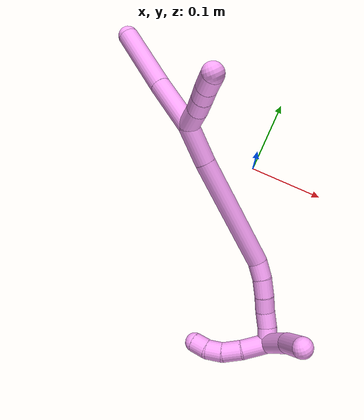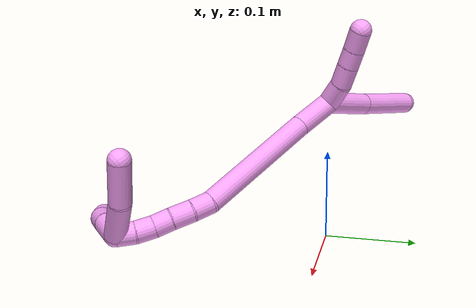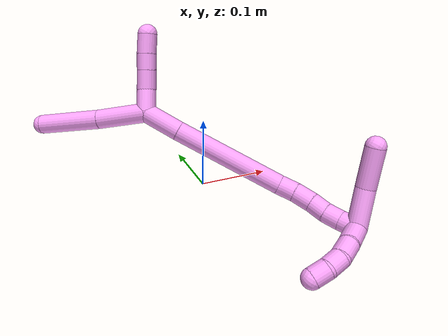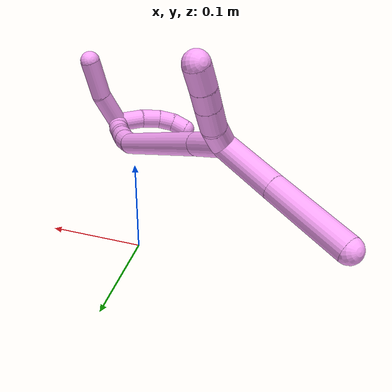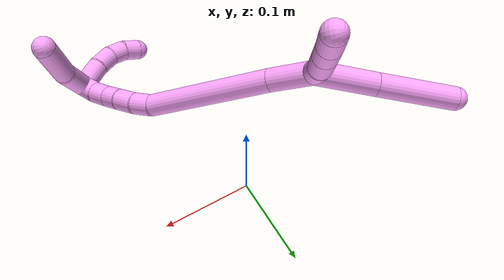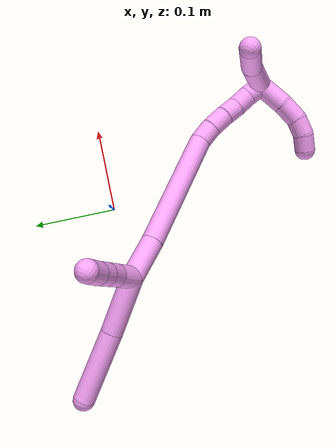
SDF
<sdf version="1.7">
 <world name="default">
  <model name="photoneo_s_sensor">
   <static>1</static>
   <pose>0 0 2 1.57079 1.57079 3.14159</pose>
   <link name="link">
    <inertial><mass>0.1</mass></inertial>
    <sensor name="sensor" type="depth">
     <update_rate>30</update_rate>
     <camera>
      <horizontal_fov>1.22</horizontal_fov>
      <image><width>1920</width><height>1200</height><format>B8G8R8</format></image>
      <clip><near>0.1</near><far>4</far></clip>
      <depth_camera><output>points</output></depth_camera>
     </camera>
     <plugin name="camera_plugin" filename="libgazebo_ros_depth_camera.so">
      <baseline>0.2</baseline>
      <alwaysOn>1</alwaysOn>
      <updateRate>0.0</updateRate>
      <cameraName>camera_ir</cameraName>
      <imageTopicName>/camera/color/image_raw</imageTopicName>
      <cameraInfoTopicName>/camera/color/camera_info</cameraInfoTopicName>
      <depthImageTopicName>/camera/depth/image_raw</depthImageTopicName>
      <depthImageCameraInfoTopicName>/camera/depth/camera_info</depthImageCameraInfoTopicName>
      <pointCloudTopicName>/camera/depth/points</pointCloudTopicName>
      <frameName>fr_optical</frameName>
      <pointCloudCutoff>0.1</pointCloudCutoff>
      <pointCloudCutoffMax>2.0</pointCloudCutoffMax>
      <distortionK1>0</distortionK1>
      <distortionK2>0</distortionK2>
      <distortionK3>0</distortionK3>
      <distortionT1>0</distortionT1>
      <distortionT2>0</distortionT2>
      <CxPrime>0</CxPrime>
      <Cx>0</Cx>
      <Cy>0</Cy>
      <focalLength>0</focalLength>
      <hackBaseline>0</hackBaseline>
     </plugin>
    </sensor>
   </link>
  </model>
  <model name="bin">
   <static>1</static>
   <link name="bottom">
    <collision name="collision-bottom">
     <pose>0 0 -0.01 0 -0 0</pose>
     <geometry><box><size>0.8 0.6 0.02</size></box></geometry>
     <surface>
      <friction><ode><mu>100</mu><mu2>100</mu2></ode></friction>
      <contact><collide_bitmask>65535</collide_bitmask></contact>
     </surface>
    </collision>
   </link>
   <link name="west_wall">
    <collision name="collision-west_wall">
     <pose>-0.41 0 0.1 0 -0 0</pose>
     <geometry><box><size>0.02 0.6 0.2</size></box></geometry>
     <surface>
      <friction><ode><mu>100</mu><mu2>100</mu2></ode></friction>
      <contact><collide_bitmask>65535</collide_bitmask></contact>
     </surface>
    </collision>
   </link>
   <link name="east_wall">
    <collision name="collision-east_wall">
     <pose>0.41 0 0.1 0 -0 0</pose>
     <geometry><box><size>0.02 0.6 0.2</size></box></geometry>
     <surface>
      <friction><ode><mu>100</mu><mu2>100</mu2></ode></friction>
      <contact><collide_bitmask>65535</collide_bitmask></contact>
     </surface>
    </collision>
   </link>
   <link name="south_wall">
    <collision name="collision-south_wall">
     <pose>0 -0.31 0.1 0 -0 0</pose>
     <geometry><box><size>0.8 0.02 0.2</size></box></geometry>
     <surface>
      <friction><ode><mu>100</mu><mu2>100</mu2></ode></friction>
      <contact><collide_bitmask>65535</collide_bitmask></contact>
     </surface>
    </collision>
   </link>
   <link name="north_wall">
    <collision name="collision-north_wall">
     <pose>0 0.31 0.1 0 -0 0</pose>
     <geometry><box><size>0.8 0.02 0.2</size></box></geometry>
     <surface>
      <friction><ode><mu>100</mu><mu2>100</mu2></ode></friction>
      <contact><collide_bitmask>65535</collide_bitmask></contact>
     </surface>
    </collision>
   </link>
  </model>
  <model name="4">
   <static>0</static>
   <link name="4">
    <collision name="collision-cylinder-e_1_2_8">
     <pose>-0.019571 0.007576 0.025425 -0.289599 -0.635602 0.095862</pose>
     <geometry><cylinder><radius>0.0125</radius><length>0.065935</length></cylinder></geometry>
     <surface>
      <friction><ode><mu>1.16</mu><mu2>1.16</mu2><slip1>0</slip1><slip2>0</slip2></ode></friction>
      <contact><ode><kp>1e+06</kp><kd>1</kd><max_vel>0</max_vel><min_depth>0.001</min_depth></ode></contact>
     </surface>
    </collision>
    <visual name="visual-cylinder-e_1_2_8">
     <pose>-0.019571 0.007576 0.025425 -0.289599 -0.635602 0.095862</pose>
     <geometry><cylinder><radius>0.0125</radius><length>0.065935</length></cylinder></geometry>
     <material><ambient>1 0.65098 0.996078 1</ambient></material>
    </visual>
    <collision name="collision-cylinder-e_2_8_6">
     <pose>-0.06235 0.025081 0.084459 -0.28726 -0.584903 0.087034</pose>
     <geometry><cylinder><radius>0.0125</radius><length>0.084065</length></cylinder></geometry>
     <surface>
      <friction><ode><mu>1.16</mu><mu2>1.16</mu2><slip1>0</slip1><slip2>0</slip2></ode></friction>
      <contact><ode><kp>1e+06</kp><kd>1</kd><max_vel>0</max_vel><min_depth>0.001</min_depth></ode></contact>
     </surface>
    </collision>
    <visual name="visual-cylinder-e_2_8_6">
     <pose>-0.06235 0.025081 0.084459 -0.28726 -0.584903 0.087034</pose>
     <geometry><cylinder><radius>0.0125</radius><length>0.084065</length></cylinder></geometry>
     <material><ambient>1 0.65098 0.996078 1</ambient></material>
    </visual>
    <collision name="collision-cylinder-e_1_2_9">
     <pose>0.012501 0.00064 0.007726 -0.082665 1.01572 -0.046025</pose>
     <geometry><cylinder><radius>0.0125</radius><length>0.02942</length></cylinder></geometry>
     <surface>
      <friction><ode><mu>1.16</mu><mu2>1.16</mu2><slip1>0</slip1><slip2>0</slip2></ode></friction>
      <contact><ode><kp>1e+06</kp><kd>1</kd><max_vel>0</max_vel><min_depth>0.001</min_depth></ode></contact>
     </surface>
    </collision>
    <visual name="visual-cylinder-e_1_2_9">
     <pose>0.012501 0.00064 0.007726 -0.082665 1.01572 -0.046025</pose>
     <geometry><cylinder><radius>0.0125</radius><length>0.02942</length></cylinder></geometry>
     <material><ambient>1 0.65098 0.996078 1</ambient></material>
    </visual>
    <collision name="collision-cylinder-e_2_9_10">
     <pose>0.035694 -0.000972 0.021773 0.342224 1.01029 0.190541</pose>
     <geometry><cylinder><radius>0.0125</radius><length>0.025245</length></cylinder></geometry>
     <surface>
      <friction><ode><mu>1.16</mu><mu2>1.16</mu2><slip1>0</slip1><slip2>0</slip2></ode></friction>
      <contact><ode><kp>1e+06</kp><kd>1</kd><max_vel>0</max_vel><min_depth>0.001</min_depth></ode></contact>
     </surface>
    </collision>
    <visual name="visual-cylinder-e_2_9_10">
     <pose>0.035694 -0.000972 0.021773 0.342224 1.01029 0.190541</pose>
     <geometry><cylinder><radius>0.0125</radius><length>0.025245</length></cylinder></geometry>
     <material><ambient>1 0.65098 0.996078 1</ambient></material>
    </visual>
    <collision name="collision-cylinder-e_3_10_11">
     <pose>0.055092 -0.005138 0.03332 0.351227 1.00209 0.193747</pose>
     <geometry><cylinder><radius>0.0125</radius><length>0.020669</length></cylinder></geometry>
     <surface>
      <friction><ode><mu>1.16</mu><mu2>1.16</mu2><slip1>0</slip1><slip2>0</slip2></ode></friction>
      <contact><ode><kp>1e+06</kp><kd>1</kd><max_vel>0</max_vel><min_depth>0.001</min_depth></ode></contact>
     </surface>
    </collision>
    <visual name="visual-cylinder-e_3_10_11">
     <pose>0.055092 -0.005138 0.03332 0.351227 1.00209 0.193747</pose>
     <geometry><cylinder><radius>0.0125</radius><length>0.020669</length></cylinder></geometry>
     <material><ambient>1 0.65098 0.996078 1</ambient></material>
    </visual>
    <collision name="collision-cylinder-e_4_11_5">
     <pose>0.074495 -0.009333 0.044248 0.380257 1.04952 0.221907</pose>
     <geometry><cylinder><radius>0.0125</radius><length>0.024667</length></cylinder></geometry>
     <surface>
      <friction><ode><mu>1.16</mu><mu2>1.16</mu2><slip1>0</slip1><slip2>0</slip2></ode></friction>
      <contact><ode><kp>1e+06</kp><kd>1</kd><max_vel>0</max_vel><min_depth>0.001</min_depth></ode></contact>
     </surface>
    </collision>
    <visual name="visual-cylinder-e_4_11_5">
     <pose>0.074495 -0.009333 0.044248 0.380257 1.04952 0.221907</pose>
     <geometry><cylinder><radius>0.0125</radius><length>0.024667</length></cylinder></geometry>
     <material><ambient>1 0.65098 0.996078 1</ambient></material>
    </visual>
    <collision name="collision-cylinder-e_1_2_12">
     <pose>0.000751 -2.6e-05 -0.023859 3.1405 0.031458 3.07182</pose>
     <geometry><cylinder><radius>0.0125</radius><length>0.047741</length></cylinder></geometry>
     <surface>
      <friction><ode><mu>1.16</mu><mu2>1.16</mu2><slip1>0</slip1><slip2>0</slip2></ode></friction>
      <contact><ode><kp>1e+06</kp><kd>1</kd><max_vel>0</max_vel><min_depth>0.001</min_depth></ode></contact>
     </surface>
    </collision>
    <visual name="visual-cylinder-e_1_2_12">
     <pose>0.000751 -2.6e-05 -0.023859 3.1405 0.031458 3.07182</pose>
     <geometry><cylinder><radius>0.0125</radius><length>0.047741</length></cylinder></geometry>
     <material><ambient>1 0.65098 0.996078 1</ambient></material>
    </visual>
    <collision name="collision-cylinder-e_2_12_13">
     <pose>0.006203 0.003274 -0.119749 -3.09544 0.065103 -1.90849</pose>
     <geometry><cylinder><radius>0.0125</radius><length>0.144522</length></cylinder></geometry>
     <surface>
      <friction><ode><mu>1.16</mu><mu2>1.16</mu2><slip1>0</slip1><slip2>0</slip2></ode></friction>
      <contact><ode><kp>1e+06</kp><kd>1</kd><max_vel>0</max_vel><min_depth>0.001</min_depth></ode></contact>
     </surface>
    </collision>
    <visual name="visual-cylinder-e_2_12_13">
     <pose>0.006203 0.003274 -0.119749 -3.09544 0.065103 -1.90849</pose>
     <geometry><cylinder><radius>0.0125</radius><length>0.144522</length></cylinder></geometry>
     <material><ambient>1 0.65098 0.996078 1</ambient></material>
    </visual>
    <collision name="collision-cylinder-e_3_13_14">
     <pose>0.011948 0.003997 -0.202709 2.90776 0.092683 0.752101</pose>
     <geometry><cylinder><radius>0.0125</radius><length>0.022566</length></cylinder></geometry>
     <surface>
      <friction><ode><mu>1.16</mu><mu2>1.16</mu2><slip1>0</slip1><slip2>0</slip2></ode></friction>
      <contact><ode><kp>1e+06</kp><kd>1</kd><max_vel>0</max_vel><min_depth>0.001</min_depth></ode></contact>
     </surface>
    </collision>
    <visual name="visual-cylinder-e_3_13_14">
     <pose>0.011948 0.003997 -0.202709 2.90776 0.092683 0.752101</pose>
     <geometry><cylinder><radius>0.0125</radius><length>0.022566</length></cylinder></geometry>
     <material><ambient>1 0.65098 0.996078 1</ambient></material>
    </visual>
    <collision name="collision-cylinder-e_4_14_15">
     <pose>0.012783 -0.002513 -0.224812 2.80522 -0.01766 -0.103921</pose>
     <geometry><cylinder><radius>0.0125</radius><length>0.023679</length></cylinder></geometry>
     <surface>
      <friction><ode><mu>1.16</mu><mu2>1.16</mu2><slip1>0</slip1><slip2>0</slip2></ode></friction>
      <contact><ode><kp>1e+06</kp><kd>1</kd><max_vel>0</max_vel><min_depth>0.001</min_depth></ode></contact>
     </surface>
    </collision>
    <visual name="visual-cylinder-e_4_14_15">
     <pose>0.012783 -0.002513 -0.224812 2.80522 -0.01766 -0.103921</pose>
     <geometry><cylinder><radius>0.0125</radius><length>0.023679</length></cylinder></geometry>
     <material><ambient>1 0.65098 0.996078 1</ambient></material>
    </visual>
    <collision name="collision-cylinder-e_5_15_16">
     <pose>0.011419 -0.009662 -0.24542 2.81059 -0.115258 -0.665147</pose>
     <geometry><cylinder><radius>0.0125</radius><length>0.020085</length></cylinder></geometry>
     <surface>
      <friction><ode><mu>1.16</mu><mu2>1.16</mu2><slip1>0</slip1><slip2>0</slip2></ode></friction>
      <contact><ode><kp>1e+06</kp><kd>1</kd><max_vel>0</max_vel><min_depth>0.001</min_depth></ode></contact>
     </surface>
    </collision>
    <visual name="visual-cylinder-e_5_15_16">
     <pose>0.011419 -0.009662 -0.24542 2.81059 -0.115258 -0.665147</pose>
     <geometry><cylinder><radius>0.0125</radius><length>0.020085</length></cylinder></geometry>
     <material><ambient>1 0.65098 0.996078 1</ambient></material>
    </visual>
    <collision name="collision-cylinder-e_6_16_17">
     <pose>0.010691 -0.016811 -0.264465 2.75547 0.041102 0.209505</pose>
     <geometry><cylinder><radius>0.0125</radius><length>0.020765</length></cylinder></geometry>
     <surface>
      <friction><ode><mu>1.16</mu><mu2>1.16</mu2><slip1>0</slip1><slip2>0</slip2></ode></friction>
      <contact><ode><kp>1e+06</kp><kd>1</kd><max_vel>0</max_vel><min_depth>0.001</min_depth></ode></contact>
     </surface>
    </collision>
    <visual name="visual-cylinder-e_6_16_17">
     <pose>0.010691 -0.016811 -0.264465 2.75547 0.041102 0.209505</pose>
     <geometry><cylinder><radius>0.0125</radius><length>0.020765</length></cylinder></geometry>
     <material><ambient>1 0.65098 0.996078 1</ambient></material>
    </visual>
    <collision name="collision-cylinder-e_7_17_1">
     <pose>0.011783 -0.026184 -0.282804 2.58211 0.06449 0.22363</pose>
     <geometry><cylinder><radius>0.0125</radius><length>0.020642</length></cylinder></geometry>
     <surface>
      <friction><ode><mu>1.16</mu><mu2>1.16</mu2><slip1>0</slip1><slip2>0</slip2></ode></friction>
      <contact><ode><kp>1e+06</kp><kd>1</kd><max_vel>0</max_vel><min_depth>0.001</min_depth></ode></contact>
     </surface>
    </collision>
    <visual name="visual-cylinder-e_7_17_1">
     <pose>0.011783 -0.026184 -0.282804 2.58211 0.06449 0.22363</pose>
     <geometry><cylinder><radius>0.0125</radius><length>0.020642</length></cylinder></geometry>
     <material><ambient>1 0.65098 0.996078 1</ambient></material>
    </visual>
    <collision name="collision-cylinder-e_1_1_18">
     <pose>0.00176 -0.044708 -0.288741 1.36015 -0.674994 -0.553098</pose>
     <geometry><cylinder><radius>0.0125</radius><length>0.034205</length></cylinder></geometry>
     <surface>
      <friction><ode><mu>1.16</mu><mu2>1.16</mu2><slip1>0</slip1><slip2>0</slip2></ode></friction>
      <contact><ode><kp>1e+06</kp><kd>1</kd><max_vel>0</max_vel><min_depth>0.001</min_depth></ode></contact>
     </surface>
    </collision>
    <visual name="visual-cylinder-e_1_1_18">
     <pose>0.00176 -0.044708 -0.288741 1.36015 -0.674994 -0.553098</pose>
     <geometry><cylinder><radius>0.0125</radius><length>0.034205</length></cylinder></geometry>
     <material><ambient>1 0.65098 0.996078 1</ambient></material>
    </visual>
    <collision name="collision-cylinder-e_2_18_19">
     <pose>-0.018192 -0.065747 -0.283668 1.29247 -0.840213 -0.649981</pose>
     <geometry><cylinder><radius>0.0125</radius><length>0.024881</length></cylinder></geometry>
     <surface>
      <friction><ode><mu>1.16</mu><mu2>1.16</mu2><slip1>0</slip1><slip2>0</slip2></ode></friction>
      <contact><ode><kp>1e+06</kp><kd>1</kd><max_vel>0</max_vel><min_depth>0.001</min_depth></ode></contact>
     </surface>
    </collision>
    <visual name="visual-cylinder-e_2_18_19">
     <pose>-0.018192 -0.065747 -0.283668 1.29247 -0.840213 -0.649981</pose>
     <geometry><cylinder><radius>0.0125</radius><length>0.024881</length></cylinder></geometry>
     <material><ambient>1 0.65098 0.996078 1</ambient></material>
    </visual>
    <collision name="collision-cylinder-e_3_19_20">
     <pose>-0.035944 -0.078044 -0.277351 0.818675 -0.962577 -0.445626</pose>
     <geometry><cylinder><radius>0.0125</radius><length>0.020682</length></cylinder></geometry>
     <surface>
      <friction><ode><mu>1.16</mu><mu2>1.16</mu2><slip1>0</slip1><slip2>0</slip2></ode></friction>
      <contact><ode><kp>1e+06</kp><kd>1</kd><max_vel>0</max_vel><min_depth>0.001</min_depth></ode></contact>
     </surface>
    </collision>
    <visual name="visual-cylinder-e_3_19_20">
     <pose>-0.035944 -0.078044 -0.277351 0.818675 -0.962577 -0.445626</pose>
     <geometry><cylinder><radius>0.0125</radius><length>0.020682</length></cylinder></geometry>
     <material><ambient>1 0.65098 0.996078 1</ambient></material>
    </visual>
    <collision name="collision-cylinder-e_4_20_4">
     <pose>-0.053309 -0.083533 -0.26861 0.244694 -1.07096 -0.145648</pose>
     <geometry><cylinder><radius>0.0125</radius><length>0.020232</length></cylinder></geometry>
     <surface>
      <friction><ode><mu>1.16</mu><mu2>1.16</mu2><slip1>0</slip1><slip2>0</slip2></ode></friction>
      <contact><ode><kp>1e+06</kp><kd>1</kd><max_vel>0</max_vel><min_depth>0.001</min_depth></ode></contact>
     </surface>
    </collision>
    <visual name="visual-cylinder-e_4_20_4">
     <pose>-0.053309 -0.083533 -0.26861 0.244694 -1.07096 -0.145648</pose>
     <geometry><cylinder><radius>0.0125</radius><length>0.020232</length></cylinder></geometry>
     <material><ambient>1 0.65098 0.996078 1</ambient></material>
    </visual>
    <collision name="collision-cylinder-e_1_1_21">
     <pose>0.035351 -0.034801 -0.283158 0.359817 1.19834 0.247147</pose>
     <geometry><cylinder><radius>0.0125</radius><length>0.049178</length></cylinder></geometry>
     <surface>
      <friction><ode><mu>1.16</mu><mu2>1.16</mu2><slip1>0</slip1><slip2>0</slip2></ode></friction>
      <contact><ode><kp>1e+06</kp><kd>1</kd><max_vel>0</max_vel><min_depth>0.001</min_depth></ode></contact>
     </surface>
    </collision>
    <visual name="visual-cylinder-e_1_1_21">
     <pose>0.035351 -0.034801 -0.283158 0.359817 1.19834 0.247147</pose>
     <geometry><cylinder><radius>0.0125</radius><length>0.049178</length></cylinder></geometry>
     <material><ambient>1 0.65098 0.996078 1</ambient></material>
    </visual>
    <collision name="collision-cylinder-e_2_21_3">
     <pose>0.080243 -0.04671 -0.265537 0.758285 1.04584 0.451505</pose>
     <geometry><cylinder><radius>0.0125</radius><length>0.050822</length></cylinder></geometry>
     <surface>
      <friction><ode><mu>1.16</mu><mu2>1.16</mu2><slip1>0</slip1><slip2>0</slip2></ode></friction>
      <contact><ode><kp>1e+06</kp><kd>1</kd><max_vel>0</max_vel><min_depth>0.001</min_depth></ode></contact>
     </surface>
    </collision>
    <visual name="visual-cylinder-e_2_21_3">
     <pose>0.080243 -0.04671 -0.265537 0.758285 1.04584 0.451505</pose>
     <geometry><cylinder><radius>0.0125</radius><length>0.050822</length></cylinder></geometry>
     <material><ambient>1 0.65098 0.996078 1</ambient></material>
    </visual>
    <collision name="collision-sphere-3">
     <pose>0.102233 -0.055467 -0.256291 0 -0 0</pose>
     <geometry><sphere><radius>0.0125</radius></sphere></geometry>
     <surface>
      <friction><ode><mu>1.16</mu><mu2>1.16</mu2><slip1>0</slip1><slip2>0</slip2></ode></friction>
      <contact><ode><kp>1e+06</kp><kd>1</kd><max_vel>0</max_vel><min_depth>0.001</min_depth></ode></contact>
     </surface>
    </collision>
    <visual name="visual-sphere-3">
     <pose>0.102233 -0.055467 -0.256291 0 -0 0</pose>
     <geometry><sphere><radius>0.0125</radius></sphere></geometry>
     <material><ambient>1 0.65098 0.996078 1</ambient></material>
    </visual>
    <collision name="collision-sphere-21">
     <pose>0.058254 -0.037952 -0.274783 0 -0 0</pose>
     <geometry><sphere><radius>0.0125</radius></sphere></geometry>
     <surface>
      <friction><ode><mu>1.16</mu><mu2>1.16</mu2><slip1>0</slip1><slip2>0</slip2></ode></friction>
      <contact><ode><kp>1e+06</kp><kd>1</kd><max_vel>0</max_vel><min_depth>0.001</min_depth></ode></contact>
     </surface>
    </collision>
    <visual name="visual-sphere-21">
     <pose>0.058254 -0.037952 -0.274783 0 -0 0</pose>
     <geometry><sphere><radius>0.0125</radius></sphere></geometry>
     <material><ambient>1 0.65098 0.996078 1</ambient></material>
    </visual>
    <collision name="collision-sphere-4">
     <pose>-0.062188 -0.084708 -0.263906 0 -0 0</pose>
     <geometry><sphere><radius>0.0125</radius></sphere></geometry>
     <surface>
      <friction><ode><mu>1.16</mu><mu2>1.16</mu2><slip1>0</slip1><slip2>0</slip2></ode></friction>
      <contact><ode><kp>1e+06</kp><kd>1</kd><max_vel>0</max_vel><min_depth>0.001</min_depth></ode></contact>
     </surface>
    </collision>
    <visual name="visual-sphere-4">
     <pose>-0.062188 -0.084708 -0.263906 0 -0 0</pose>
     <geometry><sphere><radius>0.0125</radius></sphere></geometry>
     <material><ambient>1 0.65098 0.996078 1</ambient></material>
    </visual>
    <collision name="collision-sphere-20">
     <pose>-0.044431 -0.082359 -0.273314 0 -0 0</pose>
     <geometry><sphere><radius>0.0125</radius></sphere></geometry>
     <surface>
      <friction><ode><mu>1.16</mu><mu2>1.16</mu2><slip1>0</slip1><slip2>0</slip2></ode></friction>
      <contact><ode><kp>1e+06</kp><kd>1</kd><max_vel>0</max_vel><min_depth>0.001</min_depth></ode></contact>
     </surface>
    </collision>
    <visual name="visual-sphere-20">
     <pose>-0.044431 -0.082359 -0.273314 0 -0 0</pose>
     <geometry><sphere><radius>0.0125</radius></sphere></geometry>
     <material><ambient>1 0.65098 0.996078 1</ambient></material>
    </visual>
    <collision name="collision-sphere-11">
     <pose>0.0638 -0.007053 0.038545 0 -0 0</pose>
     <geometry><sphere><radius>0.0125</radius></sphere></geometry>
     <surface>
      <friction><ode><mu>1.16</mu><mu2>1.16</mu2><slip1>0</slip1><slip2>0</slip2></ode></friction>
      <contact><ode><kp>1e+06</kp><kd>1</kd><max_vel>0</max_vel><min_depth>0.001</min_depth></ode></contact>
     </surface>
    </collision>
    <visual name="visual-sphere-11">
     <pose>0.0638 -0.007053 0.038545 0 -0 0</pose>
     <geometry><sphere><radius>0.0125</radius></sphere></geometry>
     <material><ambient>1 0.65098 0.996078 1</ambient></material>
    </visual>
    <collision name="collision-sphere-10">
     <pose>0.046385 -0.003223 0.028094 0 -0 0</pose>
     <geometry><sphere><radius>0.0125</radius></sphere></geometry>
     <surface>
      <friction><ode><mu>1.16</mu><mu2>1.16</mu2><slip1>0</slip1><slip2>0</slip2></ode></friction>
      <contact><ode><kp>1e+06</kp><kd>1</kd><max_vel>0</max_vel><min_depth>0.001</min_depth></ode></contact>
     </surface>
    </collision>
    <visual name="visual-sphere-10">
     <pose>0.046385 -0.003223 0.028094 0 -0 0</pose>
     <geometry><sphere><radius>0.0125</radius></sphere></geometry>
     <material><ambient>1 0.65098 0.996078 1</ambient></material>
    </visual>
    <collision name="collision-sphere-6">
     <pose>-0.085557 0.03501 0.118068 0 -0 0</pose>
     <geometry><sphere><radius>0.0125</radius></sphere></geometry>
     <surface>
      <friction><ode><mu>1.16</mu><mu2>1.16</mu2><slip1>0</slip1><slip2>0</slip2></ode></friction>
      <contact><ode><kp>1e+06</kp><kd>1</kd><max_vel>0</max_vel><min_depth>0.001</min_depth></ode></contact>
     </surface>
    </collision>
    <visual name="visual-sphere-6">
     <pose>-0.085557 0.03501 0.118068 0 -0 0</pose>
     <geometry><sphere><radius>0.0125</radius></sphere></geometry>
     <material><ambient>1 0.65098 0.996078 1</ambient></material>
    </visual>
    <collision name="collision-sphere-9">
     <pose>0.025003 0.00128 0.015452 0 -0 0</pose>
     <geometry><sphere><radius>0.0125</radius></sphere></geometry>
     <surface>
      <friction><ode><mu>1.16</mu><mu2>1.16</mu2><slip1>0</slip1><slip2>0</slip2></ode></friction>
      <contact><ode><kp>1e+06</kp><kd>1</kd><max_vel>0</max_vel><min_depth>0.001</min_depth></ode></contact>
     </surface>
    </collision>
    <visual name="visual-sphere-9">
     <pose>0.025003 0.00128 0.015452 0 -0 0</pose>
     <geometry><sphere><radius>0.0125</radius></sphere></geometry>
     <material><ambient>1 0.65098 0.996078 1</ambient></material>
    </visual>
    <collision name="collision-sphere-2">
     <geometry><sphere><radius>0.0125</radius></sphere></geometry>
     <surface>
      <friction><ode><mu>1.16</mu><mu2>1.16</mu2><slip1>0</slip1><slip2>0</slip2></ode></friction>
      <contact><ode><kp>1e+06</kp><kd>1</kd><max_vel>0</max_vel><min_depth>0.001</min_depth></ode></contact>
     </surface>
    </collision>
    <visual name="visual-sphere-2">
     <geometry><sphere><radius>0.0125</radius></sphere></geometry>
     <material><ambient>1 0.65098 0.996078 1</ambient></material>
    </visual>
    <collision name="collision-sphere-19">
     <pose>-0.027458 -0.073729 -0.281388 0 -0 0</pose>
     <geometry><sphere><radius>0.0125</radius></sphere></geometry>
     <surface>
      <friction><ode><mu>1.16</mu><mu2>1.16</mu2><slip1>0</slip1><slip2>0</slip2></ode></friction>
      <contact><ode><kp>1e+06</kp><kd>1</kd><max_vel>0</max_vel><min_depth>0.001</min_depth></ode></contact>
     </surface>
    </collision>
    <visual name="visual-sphere-19">
     <pose>-0.027458 -0.073729 -0.281388 0 -0 0</pose>
     <geometry><sphere><radius>0.0125</radius></sphere></geometry>
     <material><ambient>1 0.65098 0.996078 1</ambient></material>
    </visual>
    <collision name="collision-sphere-8">
     <pose>-0.039143 0.015152 0.050849 0 -0 0</pose>
     <geometry><sphere><radius>0.0125</radius></sphere></geometry>
     <surface>
      <friction><ode><mu>1.16</mu><mu2>1.16</mu2><slip1>0</slip1><slip2>0</slip2></ode></friction>
      <contact><ode><kp>1e+06</kp><kd>1</kd><max_vel>0</max_vel><min_depth>0.001</min_depth></ode></contact>
     </surface>
    </collision>
    <visual name="visual-sphere-8">
     <pose>-0.039143 0.015152 0.050849 0 -0 0</pose>
     <geometry><sphere><radius>0.0125</radius></sphere></geometry>
     <material><ambient>1 0.65098 0.996078 1</ambient></material>
    </visual>
    <collision name="collision-sphere-5">
     <pose>0.085191 -0.011612 0.049952 0 -0 0</pose>
     <geometry><sphere><radius>0.0125</radius></sphere></geometry>
     <surface>
      <friction><ode><mu>1.16</mu><mu2>1.16</mu2><slip1>0</slip1><slip2>0</slip2></ode></friction>
      <contact><ode><kp>1e+06</kp><kd>1</kd><max_vel>0</max_vel><min_depth>0.001</min_depth></ode></contact>
     </surface>
    </collision>
    <visual name="visual-sphere-5">
     <pose>0.085191 -0.011612 0.049952 0 -0 0</pose>
     <geometry><sphere><radius>0.0125</radius></sphere></geometry>
     <material><ambient>1 0.65098 0.996078 1</ambient></material>
    </visual>
    <collision name="collision-sphere-12">
     <pose>0.001502 -5.2e-05 -0.047718 0 -0 0</pose>
     <geometry><sphere><radius>0.0125</radius></sphere></geometry>
     <surface>
      <friction><ode><mu>1.16</mu><mu2>1.16</mu2><slip1>0</slip1><slip2>0</slip2></ode></friction>
      <contact><ode><kp>1e+06</kp><kd>1</kd><max_vel>0</max_vel><min_depth>0.001</min_depth></ode></contact>
     </surface>
    </collision>
    <visual name="visual-sphere-12">
     <pose>0.001502 -5.2e-05 -0.047718 0 -0 0</pose>
     <geometry><sphere><radius>0.0125</radius></sphere></geometry>
     <material><ambient>1 0.65098 0.996078 1</ambient></material>
    </visual>
    <collision name="collision-sphere-13">
     <pose>0.010904 0.0066 -0.19178 0 -0 0</pose>
     <geometry><sphere><radius>0.0125</radius></sphere></geometry>
     <surface>
      <friction><ode><mu>1.16</mu><mu2>1.16</mu2><slip1>0</slip1><slip2>0</slip2></ode></friction>
      <contact><ode><kp>1e+06</kp><kd>1</kd><max_vel>0</max_vel><min_depth>0.001</min_depth></ode></contact>
     </surface>
    </collision>
    <visual name="visual-sphere-13">
     <pose>0.010904 0.0066 -0.19178 0 -0 0</pose>
     <geometry><sphere><radius>0.0125</radius></sphere></geometry>
     <material><ambient>1 0.65098 0.996078 1</ambient></material>
    </visual>
    <collision name="collision-sphere-14">
     <pose>0.012992 0.001394 -0.213638 0 -0 0</pose>
     <geometry><sphere><radius>0.0125</radius></sphere></geometry>
     <surface>
      <friction><ode><mu>1.16</mu><mu2>1.16</mu2><slip1>0</slip1><slip2>0</slip2></ode></friction>
      <contact><ode><kp>1e+06</kp><kd>1</kd><max_vel>0</max_vel><min_depth>0.001</min_depth></ode></contact>
     </surface>
    </collision>
    <visual name="visual-sphere-14">
     <pose>0.012992 0.001394 -0.213638 0 -0 0</pose>
     <geometry><sphere><radius>0.0125</radius></sphere></geometry>
     <material><ambient>1 0.65098 0.996078 1</ambient></material>
    </visual>
    <collision name="collision-sphere-15">
     <pose>0.012574 -0.00642 -0.235986 0 -0 0</pose>
     <geometry><sphere><radius>0.0125</radius></sphere></geometry>
     <surface>
      <friction><ode><mu>1.16</mu><mu2>1.16</mu2><slip1>0</slip1><slip2>0</slip2></ode></friction>
      <contact><ode><kp>1e+06</kp><kd>1</kd><max_vel>0</max_vel><min_depth>0.001</min_depth></ode></contact>
     </surface>
    </collision>
    <visual name="visual-sphere-15">
     <pose>0.012574 -0.00642 -0.235986 0 -0 0</pose>
     <geometry><sphere><radius>0.0125</radius></sphere></geometry>
     <material><ambient>1 0.65098 0.996078 1</ambient></material>
    </visual>
    <collision name="collision-sphere-16">
     <pose>0.010264 -0.012904 -0.254855 0 -0 0</pose>
     <geometry><sphere><radius>0.0125</radius></sphere></geometry>
     <surface>
      <friction><ode><mu>1.16</mu><mu2>1.16</mu2><slip1>0</slip1><slip2>0</slip2></ode></friction>
      <contact><ode><kp>1e+06</kp><kd>1</kd><max_vel>0</max_vel><min_depth>0.001</min_depth></ode></contact>
     </surface>
    </collision>
    <visual name="visual-sphere-16">
     <pose>0.010264 -0.012904 -0.254855 0 -0 0</pose>
     <geometry><sphere><radius>0.0125</radius></sphere></geometry>
     <material><ambient>1 0.65098 0.996078 1</ambient></material>
    </visual>
    <collision name="collision-sphere-17">
     <pose>0.011117 -0.020718 -0.274075 0 -0 0</pose>
     <geometry><sphere><radius>0.0125</radius></sphere></geometry>
     <surface>
      <friction><ode><mu>1.16</mu><mu2>1.16</mu2><slip1>0</slip1><slip2>0</slip2></ode></friction>
      <contact><ode><kp>1e+06</kp><kd>1</kd><max_vel>0</max_vel><min_depth>0.001</min_depth></ode></contact>
     </surface>
    </collision>
    <visual name="visual-sphere-17">
     <pose>0.011117 -0.020718 -0.274075 0 -0 0</pose>
     <geometry><sphere><radius>0.0125</radius></sphere></geometry>
     <material><ambient>1 0.65098 0.996078 1</ambient></material>
    </visual>
    <collision name="collision-sphere-1">
     <pose>0.012448 -0.031651 -0.291533 0 -0 0</pose>
     <geometry><sphere><radius>0.0125</radius></sphere></geometry>
     <surface>
      <friction><ode><mu>1.16</mu><mu2>1.16</mu2><slip1>0</slip1><slip2>0</slip2></ode></friction>
      <contact><ode><kp>1e+06</kp><kd>1</kd><max_vel>0</max_vel><min_depth>0.001</min_depth></ode></contact>
     </surface>
    </collision>
    <visual name="visual-sphere-1">
     <pose>0.012448 -0.031651 -0.291533 0 -0 0</pose>
     <geometry><sphere><radius>0.0125</radius></sphere></geometry>
     <material><ambient>1 0.65098 0.996078 1</ambient></material>
    </visual>
    <collision name="collision-sphere-18">
     <pose>-0.008927 -0.057765 -0.285949 0 -0 0</pose>
     <geometry><sphere><radius>0.0125</radius></sphere></geometry>
     <surface>
      <friction><ode><mu>1.16</mu><mu2>1.16</mu2><slip1>0</slip1><slip2>0</slip2></ode></friction>
      <contact><ode><kp>1e+06</kp><kd>1</kd><max_vel>0</max_vel><min_depth>0.001</min_depth></ode></contact>
     </surface>
    </collision>
    <visual name="visual-sphere-18">
     <pose>-0.008927 -0.057765 -0.285949 0 -0 0</pose>
     <geometry><sphere><radius>0.0125</radius></sphere></geometry>
     <material><ambient>1 0.65098 0.996078 1</ambient></material>
    </visual>
    <inertial>
     <pose>0.004686 -0.011826 -0.118391 0 -0 0</pose>
     <mass>0.75</mass>
     <inertia>
      <ixx>-0.000234</ixx>
      <ixy>0</ixy>
      <ixz>0</ixz>
      <iyy>-3.4e-05</iyy>
      <iyz>0</iyz>
      <izz>-1.5e-05</izz>
     </inertia>
    </inertial>
   </link>
   <pose>-0.08429 -0.011685 0.131408 -0.860809 -0.836293 0.279246</pose>
  </model>
 </world>
</sdf>
